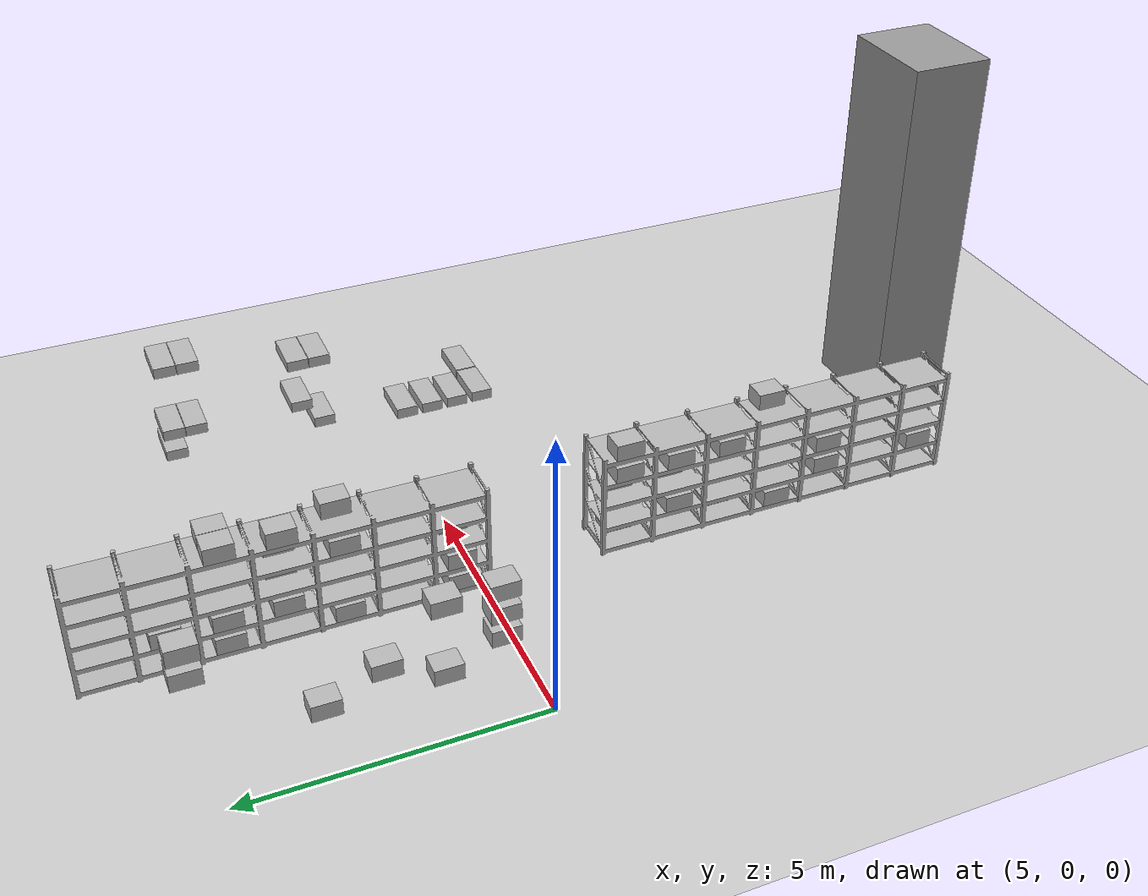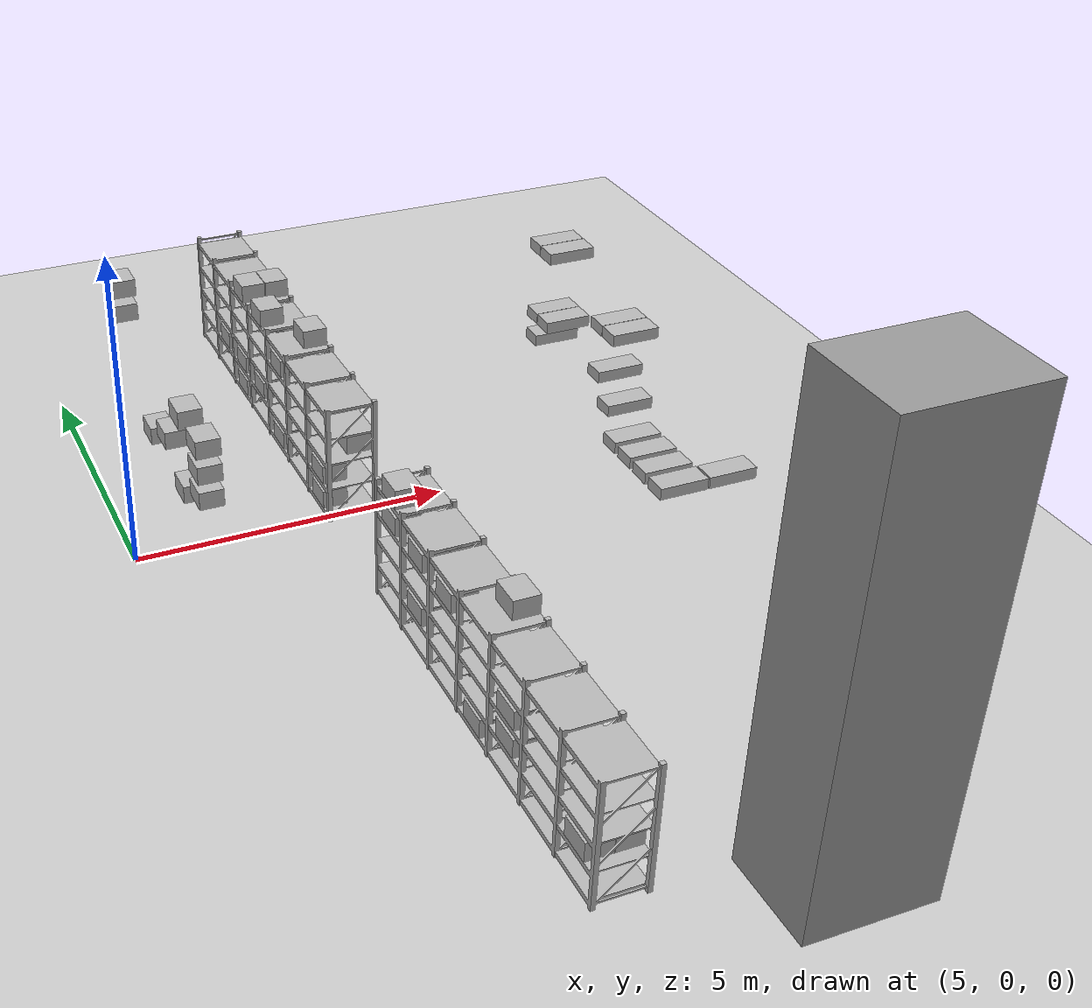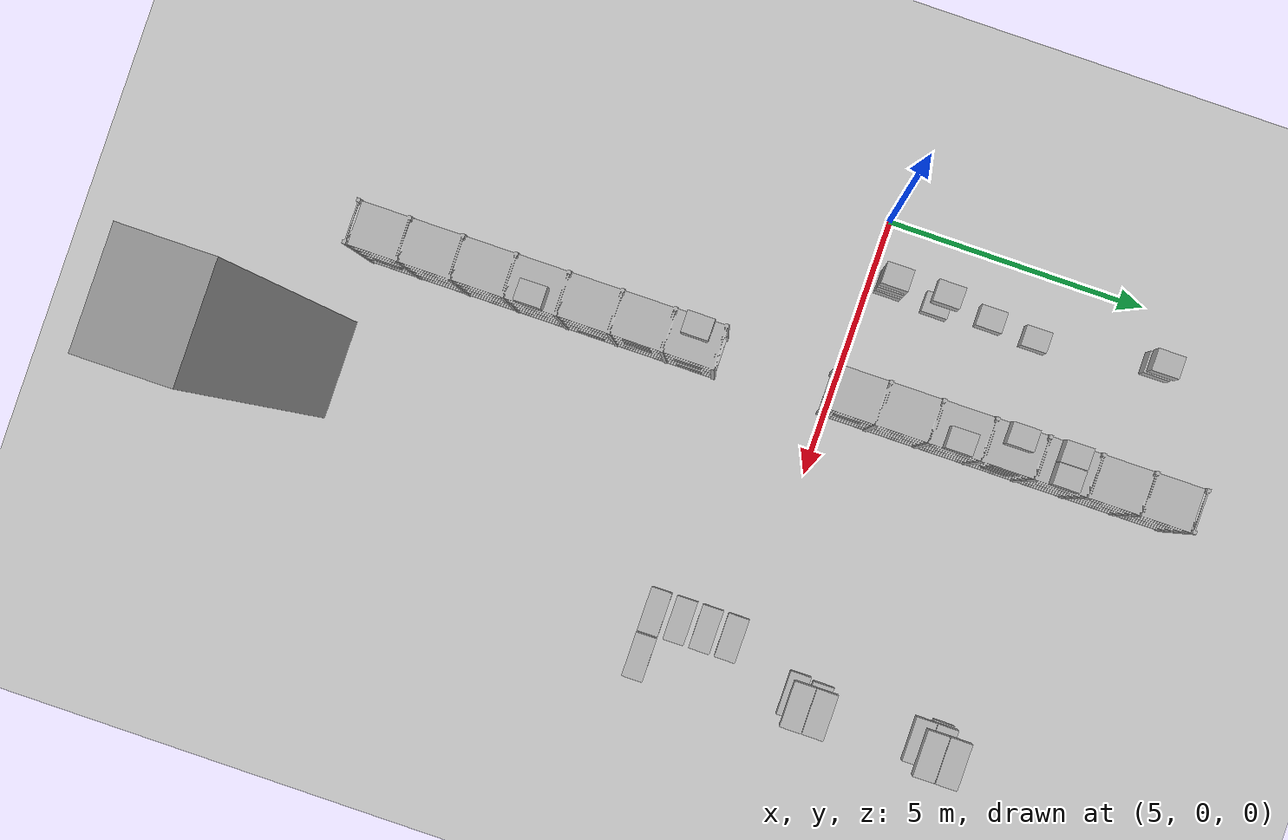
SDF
<sdf version="1.6">
 <world name="default">
  <model name="ground_plane">
   <static>1</static>
   <link name="link">
    <collision name="collision">
     <geometry><plane><normal>0 0 1</normal><size>100 100</size></plane></geometry>
     <surface><friction><ode><mu>100</mu><mu2>50</mu2></ode></friction></surface>
    </collision>
    <visual name="visual">
     <cast_shadows>0</cast_shadows>
     <geometry><plane><normal>0 0 1</normal><size>100 100</size></plane></geometry>
     <material>
      <script><uri>file://media/materials/scripts/gazebo.material</uri><name>Gazebo/Grey</name></script>
     </material>
    </visual>
   </link>
  </model>
  <model name="box_A_089">
   <pose>6.2649 0.35551 0.702 0 0 0</pose>
   <link name="link">
    <inertial>
     <mass>2.0</mass>
     <inertia><ixx>0.05667</ixx><iyy>0.04167</iyy><izz>0.06833</izz><ixy>0</ixy><ixz>0</ixz><iyz>0</iyz></inertia>
    </inertial>
    <collision name="collision">
     <geometry><box><size>0.4 0.5 0.3</size></box></geometry>
     <surface><friction><ode><mu>1.0</mu><mu2>1.0</mu2></ode></friction></surface>
    </collision>
    <visual name="visual">
     <cast_shadows>0</cast_shadows>
     <geometry><box><size>0.4 0.5 0.3</size></box></geometry>
     <material>
      <script>
       <uri>model://labeled_boxes/materials/scripts</uri>
       <uri>model://labeled_boxes/materials/textures</uri>
       <name>LabeledBox/A-089</name>
      </script>
     </material>
    </visual>
   </link>
  </model>
  <model name="box_A_091">
   <pose>6.2649 0.35551 1.152 0 0 0</pose>
   <link name="link">
    <inertial>
     <mass>2.0</mass>
     <inertia><ixx>0.05667</ixx><iyy>0.04167</iyy><izz>0.06833</izz><ixy>0</ixy><ixz>0</ixz><iyz>0</iyz></inertia>
    </inertial>
    <collision name="collision">
     <geometry><box><size>0.4 0.5 0.3</size></box></geometry>
     <surface><friction><ode><mu>1.0</mu><mu2>1.0</mu2></ode></friction></surface>
    </collision>
    <visual name="visual">
     <cast_shadows>0</cast_shadows>
     <geometry><box><size>0.4 0.5 0.3</size></box></geometry>
     <material>
      <script>
       <uri>model://labeled_boxes/materials/scripts</uri>
       <uri>model://labeled_boxes/materials/textures</uri>
       <name>LabeledBox/A-091</name>
      </script>
     </material>
    </visual>
   </link>
  </model>
  <model name="box_A_092">
   <pose>6.2649 0.35551 1.602 0 0 0</pose>
   <link name="link">
    <inertial>
     <mass>2.0</mass>
     <inertia><ixx>0.05667</ixx><iyy>0.04167</iyy><izz>0.06833</izz><ixy>0</ixy><ixz>0</ixz><iyz>0</iyz></inertia>
    </inertial>
    <collision name="collision">
     <geometry><box><size>0.4 0.5 0.3</size></box></geometry>
     <surface><friction><ode><mu>1.0</mu><mu2>1.0</mu2></ode></friction></surface>
    </collision>
    <visual name="visual">
     <cast_shadows>0</cast_shadows>
     <geometry><box><size>0.4 0.5 0.3</size></box></geometry>
     <material>
      <script>
       <uri>model://labeled_boxes/materials/scripts</uri>
       <uri>model://labeled_boxes/materials/textures</uri>
       <name>LabeledBox/A-092</name>
      </script>
     </material>
    </visual>
   </link>
  </model>
  <model name="box_A_093">
   <pose>6.2649 1.3094 0.252 0 0 0</pose>
   <link name="link">
    <inertial>
     <mass>2.0</mass>
     <inertia><ixx>0.05667</ixx><iyy>0.04167</iyy><izz>0.06833</izz><ixy>0</ixy><ixz>0</ixz><iyz>0</iyz></inertia>
    </inertial>
    <collision name="collision">
     <geometry><box><size>0.4 0.5 0.3</size></box></geometry>
     <surface><friction><ode><mu>1.0</mu><mu2>1.0</mu2></ode></friction></surface>
    </collision>
    <visual name="visual">
     <cast_shadows>0</cast_shadows>
     <geometry><box><size>0.4 0.5 0.3</size></box></geometry>
     <material>
      <script>
       <uri>model://labeled_boxes/materials/scripts</uri>
       <uri>model://labeled_boxes/materials/textures</uri>
       <name>LabeledBox/A-093</name>
      </script>
     </material>
    </visual>
   </link>
  </model>
  <model name="box_A_095">
   <pose>6.2649 1.3094 1.602 0 0 0</pose>
   <link name="link">
    <inertial>
     <mass>2.0</mass>
     <inertia><ixx>0.05667</ixx><iyy>0.04167</iyy><izz>0.06833</izz><ixy>0</ixy><ixz>0</ixz><iyz>0</iyz></inertia>
    </inertial>
    <collision name="collision">
     <geometry><box><size>0.4 0.5 0.3</size></box></geometry>
     <surface><friction><ode><mu>1.0</mu><mu2>1.0</mu2></ode></friction></surface>
    </collision>
    <visual name="visual">
     <cast_shadows>0</cast_shadows>
     <geometry><box><size>0.4 0.5 0.3</size></box></geometry>
     <material>
      <script>
       <uri>model://labeled_boxes/materials/scripts</uri>
       <uri>model://labeled_boxes/materials/textures</uri>
       <name>LabeledBox/A-095</name>
      </script>
     </material>
    </visual>
   </link>
  </model>
  <model name="box_A_096">
   <pose>6.2649 2.2809 0.702 0 0 0</pose>
   <link name="link">
    <inertial>
     <mass>2.0</mass>
     <inertia><ixx>0.05667</ixx><iyy>0.04167</iyy><izz>0.06833</izz><ixy>0</ixy><ixz>0</ixz><iyz>0</iyz></inertia>
    </inertial>
    <collision name="collision">
     <geometry><box><size>0.4 0.5 0.3</size></box></geometry>
     <surface><friction><ode><mu>1.0</mu><mu2>1.0</mu2></ode></friction></surface>
    </collision>
    <visual name="visual">
     <cast_shadows>0</cast_shadows>
     <geometry><box><size>0.4 0.5 0.3</size></box></geometry>
     <material>
      <script>
       <uri>model://labeled_boxes/materials/scripts</uri>
       <uri>model://labeled_boxes/materials/textures</uri>
       <name>LabeledBox/A-096</name>
      </script>
     </material>
    </visual>
   </link>
  </model>
  <model name="box_A_098">
   <pose>6.2649 3.2523 0.252 0 0 0</pose>
   <link name="link">
    <inertial>
     <mass>2.0</mass>
     <inertia><ixx>0.05667</ixx><iyy>0.04167</iyy><izz>0.06833</izz><ixy>0</ixy><ixz>0</ixz><iyz>0</iyz></inertia>
    </inertial>
    <collision name="collision">
     <geometry><box><size>0.4 0.5 0.3</size></box></geometry>
     <surface><friction><ode><mu>1.0</mu><mu2>1.0</mu2></ode></friction></surface>
    </collision>
    <visual name="visual">
     <cast_shadows>0</cast_shadows>
     <geometry><box><size>0.4 0.5 0.3</size></box></geometry>
     <material>
      <script>
       <uri>model://labeled_boxes/materials/scripts</uri>
       <uri>model://labeled_boxes/materials/textures</uri>
       <name>LabeledBox/A-098</name>
      </script>
     </material>
    </visual>
   </link>
  </model>
  <model name="box_A_103">
   <pose>6.2649 5.1951 1.602 0 0 0</pose>
   <link name="link">
    <inertial>
     <mass>2.0</mass>
     <inertia><ixx>0.05667</ixx><iyy>0.04167</iyy><izz>0.06833</izz><ixy>0</ixy><ixz>0</ixz><iyz>0</iyz></inertia>
    </inertial>
    <collision name="collision">
     <geometry><box><size>0.4 0.5 0.3</size></box></geometry>
     <surface><friction><ode><mu>1.0</mu><mu2>1.0</mu2></ode></friction></surface>
    </collision>
    <visual name="visual">
     <cast_shadows>0</cast_shadows>
     <geometry><box><size>0.4 0.5 0.3</size></box></geometry>
     <material>
      <script>
       <uri>model://labeled_boxes/materials/scripts</uri>
       <uri>model://labeled_boxes/materials/textures</uri>
       <name>LabeledBox/A-103</name>
      </script>
     </material>
    </visual>
   </link>
  </model>
  <model name="box_A_104">
   <pose>6.2649 5.1951 2.052 0 0 0</pose>
   <link name="link">
    <inertial>
     <mass>2.0</mass>
     <inertia><ixx>0.05667</ixx><iyy>0.04167</iyy><izz>0.06833</izz><ixy>0</ixy><ixz>0</ixz><iyz>0</iyz></inertia>
    </inertial>
    <collision name="collision">
     <geometry><box><size>0.4 0.5 0.3</size></box></geometry>
     <surface><friction><ode><mu>1.0</mu><mu2>1.0</mu2></ode></friction></surface>
    </collision>
    <visual name="visual">
     <cast_shadows>0</cast_shadows>
     <geometry><box><size>0.4 0.5 0.3</size></box></geometry>
     <material>
      <script>
       <uri>model://labeled_boxes/materials/scripts</uri>
       <uri>model://labeled_boxes/materials/textures</uri>
       <name>LabeledBox/A-104</name>
      </script>
     </material>
    </visual>
   </link>
  </model>
  <include>
   <name>rack_A5_0</name>
   <uri>model://warehouse_rack_5lvl_7bay</uri>
   <pose>8.4599 -5.5477 0 0 0 0</pose>
  </include>
  <model name="box_A_111">
   <pose>8.2549 -8.4445 0.702 0 0 0</pose>
   <link name="link">
    <inertial>
     <mass>2.0</mass>
     <inertia><ixx>0.05667</ixx><iyy>0.04167</iyy><izz>0.06833</izz><ixy>0</ixy><ixz>0</ixz><iyz>0</iyz></inertia>
    </inertial>
    <collision name="collision">
     <geometry><box><size>0.4 0.5 0.3</size></box></geometry>
     <surface><friction><ode><mu>1.0</mu><mu2>1.0</mu2></ode></friction></surface>
    </collision>
    <visual name="visual">
     <cast_shadows>0</cast_shadows>
     <geometry><box><size>0.4 0.5 0.3</size></box></geometry>
     <material>
      <script>
       <uri>model://labeled_boxes/materials/scripts</uri>
       <uri>model://labeled_boxes/materials/textures</uri>
       <name>LabeledBox/A-111</name>
      </script>
     </material>
    </visual>
   </link>
  </model>
  <model name="box_A_112">
   <pose>8.6649 -8.4445 0.702 0 0 0</pose>
   <link name="link">
    <inertial>
     <mass>2.0</mass>
     <inertia><ixx>0.05667</ixx><iyy>0.04167</iyy><izz>0.06833</izz><ixy>0</ixy><ixz>0</ixz><iyz>0</iyz></inertia>
    </inertial>
    <collision name="collision">
     <geometry><box><size>0.4 0.5 0.3</size></box></geometry>
     <surface><friction><ode><mu>1.0</mu><mu2>1.0</mu2></ode></friction></surface>
    </collision>
    <visual name="visual">
     <cast_shadows>0</cast_shadows>
     <geometry><box><size>0.4 0.5 0.3</size></box></geometry>
     <material>
      <script>
       <uri>model://labeled_boxes/materials/scripts</uri>
       <uri>model://labeled_boxes/materials/textures</uri>
       <name>LabeledBox/A-112</name>
      </script>
     </material>
    </visual>
   </link>
  </model>
  <model name="box_A_113">
   <pose>8.2549 -6.5191 0.702 0 0 0</pose>
   <link name="link">
    <inertial>
     <mass>2.0</mass>
     <inertia><ixx>0.05667</ixx><iyy>0.04167</iyy><izz>0.06833</izz><ixy>0</ixy><ixz>0</ixz><iyz>0</iyz></inertia>
    </inertial>
    <collision name="collision">
     <geometry><box><size>0.4 0.5 0.3</size></box></geometry>
     <surface><friction><ode><mu>1.0</mu><mu2>1.0</mu2></ode></friction></surface>
    </collision>
    <visual name="visual">
     <cast_shadows>0</cast_shadows>
     <geometry><box><size>0.4 0.5 0.3</size></box></geometry>
     <material>
      <script>
       <uri>model://labeled_boxes/materials/scripts</uri>
       <uri>model://labeled_boxes/materials/textures</uri>
       <name>LabeledBox/A-113</name>
      </script>
     </material>
    </visual>
   </link>
  </model>
  <model name="box_A_114">
   <pose>8.2549 -6.5191 1.152 0 0 0</pose>
   <link name="link">
    <inertial>
     <mass>2.0</mass>
     <inertia><ixx>0.05667</ixx><iyy>0.04167</iyy><izz>0.06833</izz><ixy>0</ixy><ixz>0</ixz><iyz>0</iyz></inertia>
    </inertial>
    <collision name="collision">
     <geometry><box><size>0.4 0.5 0.3</size></box></geometry>
     <surface><friction><ode><mu>1.0</mu><mu2>1.0</mu2></ode></friction></surface>
    </collision>
    <visual name="visual">
     <cast_shadows>0</cast_shadows>
     <geometry><box><size>0.4 0.5 0.3</size></box></geometry>
     <material>
      <script>
       <uri>model://labeled_boxes/materials/scripts</uri>
       <uri>model://labeled_boxes/materials/textures</uri>
       <name>LabeledBox/A-114</name>
      </script>
     </material>
    </visual>
   </link>
  </model>
  <model name="box_A_115">
   <pose>8.2549 -5.5477 0.252 0 0 0</pose>
   <link name="link">
    <inertial>
     <mass>2.0</mass>
     <inertia><ixx>0.05667</ixx><iyy>0.04167</iyy><izz>0.06833</izz><ixy>0</ixy><ixz>0</ixz><iyz>0</iyz></inertia>
    </inertial>
    <collision name="collision">
     <geometry><box><size>0.4 0.5 0.3</size></box></geometry>
     <surface><friction><ode><mu>1.0</mu><mu2>1.0</mu2></ode></friction></surface>
    </collision>
    <visual name="visual">
     <cast_shadows>0</cast_shadows>
     <geometry><box><size>0.4 0.5 0.3</size></box></geometry>
     <material>
      <script>
       <uri>model://labeled_boxes/materials/scripts</uri>
       <uri>model://labeled_boxes/materials/textures</uri>
       <name>LabeledBox/A-115</name>
      </script>
     </material>
    </visual>
   </link>
  </model>
  <model name="box_A_116">
   <pose>8.6649 -5.5477 2.052 0 0 0</pose>
   <link name="link">
    <inertial>
     <mass>2.0</mass>
     <inertia><ixx>0.05667</ixx><iyy>0.04167</iyy><izz>0.06833</izz><ixy>0</ixy><ixz>0</ixz><iyz>0</iyz></inertia>
    </inertial>
    <collision name="collision">
     <geometry><box><size>0.4 0.5 0.3</size></box></geometry>
     <surface><friction><ode><mu>1.0</mu><mu2>1.0</mu2></ode></friction></surface>
    </collision>
    <visual name="visual">
     <cast_shadows>0</cast_shadows>
     <geometry><box><size>0.4 0.5 0.3</size></box></geometry>
     <material>
      <script>
       <uri>model://labeled_boxes/materials/scripts</uri>
       <uri>model://labeled_boxes/materials/textures</uri>
       <name>LabeledBox/A-116</name>
      </script>
     </material>
    </visual>
   </link>
  </model>
  <model name="box_A_117">
   <pose>8.6649 -4.5763 0.252 0 0 0</pose>
   <link name="link">
    <inertial>
     <mass>2.0</mass>
     <inertia><ixx>0.05667</ixx><iyy>0.04167</iyy><izz>0.06833</izz><ixy>0</ixy><ixz>0</ixz><iyz>0</iyz></inertia>
    </inertial>
    <collision name="collision">
     <geometry><box><size>0.4 0.5 0.3</size></box></geometry>
     <surface><friction><ode><mu>1.0</mu><mu2>1.0</mu2></ode></friction></surface>
    </collision>
    <visual name="visual">
     <cast_shadows>0</cast_shadows>
     <geometry><box><size>0.4 0.5 0.3</size></box></geometry>
     <material>
      <script>
       <uri>model://labeled_boxes/materials/scripts</uri>
       <uri>model://labeled_boxes/materials/textures</uri>
       <name>LabeledBox/A-117</name>
      </script>
     </material>
    </visual>
   </link>
  </model>
  <model name="box_A_118">
   <pose>8.2549 -4.5763 1.602 0 0 0</pose>
   <link name="link">
    <inertial>
     <mass>2.0</mass>
     <inertia><ixx>0.05667</ixx><iyy>0.04167</iyy><izz>0.06833</izz><ixy>0</ixy><ixz>0</ixz><iyz>0</iyz></inertia>
    </inertial>
    <collision name="collision">
     <geometry><box><size>0.4 0.5 0.3</size></box></geometry>
     <surface><friction><ode><mu>1.0</mu><mu2>1.0</mu2></ode></friction></surface>
    </collision>
    <visual name="visual">
     <cast_shadows>0</cast_shadows>
     <geometry><box><size>0.4 0.5 0.3</size></box></geometry>
     <material>
      <script>
       <uri>model://labeled_boxes/materials/scripts</uri>
       <uri>model://labeled_boxes/materials/textures</uri>
       <name>LabeledBox/A-118</name>
      </script>
     </material>
    </visual>
   </link>
  </model>
  <model name="box_A_119">
   <pose>8.2549 -3.6049 0.702 0 0 0</pose>
   <link name="link">
    <inertial>
     <mass>2.0</mass>
     <inertia><ixx>0.05667</ixx><iyy>0.04167</iyy><izz>0.06833</izz><ixy>0</ixy><ixz>0</ixz><iyz>0</iyz></inertia>
    </inertial>
    <collision name="collision">
     <geometry><box><size>0.4 0.5 0.3</size></box></geometry>
     <surface><friction><ode><mu>1.0</mu><mu2>1.0</mu2></ode></friction></surface>
    </collision>
    <visual name="visual">
     <cast_shadows>0</cast_shadows>
     <geometry><box><size>0.4 0.5 0.3</size></box></geometry>
     <material>
      <script>
       <uri>model://labeled_boxes/materials/scripts</uri>
       <uri>model://labeled_boxes/materials/textures</uri>
       <name>LabeledBox/A-119</name>
      </script>
     </material>
    </visual>
   </link>
  </model>
  <model name="box_A_120">
   <pose>8.6649 -3.6049 1.152 0 0 0</pose>
   <link name="link">
    <inertial>
     <mass>2.0</mass>
     <inertia><ixx>0.05667</ixx><iyy>0.04167</iyy><izz>0.06833</izz><ixy>0</ixy><ixz>0</ixz><iyz>0</iyz></inertia>
    </inertial>
    <collision name="collision">
     <geometry><box><size>0.4 0.5 0.3</size></box></geometry>
     <surface><friction><ode><mu>1.0</mu><mu2>1.0</mu2></ode></friction></surface>
    </collision>
    <visual name="visual">
     <cast_shadows>0</cast_shadows>
     <geometry><box><size>0.4 0.5 0.3</size></box></geometry>
     <material>
      <script>
       <uri>model://labeled_boxes/materials/scripts</uri>
       <uri>model://labeled_boxes/materials/textures</uri>
       <name>LabeledBox/A-120</name>
      </script>
     </material>
    </visual>
   </link>
  </model>
  <model name="box_A_121">
   <pose>8.2549 -3.6049 1.602 0 0 0</pose>
   <link name="link">
    <inertial>
     <mass>2.0</mass>
     <inertia><ixx>0.05667</ixx><iyy>0.04167</iyy><izz>0.06833</izz><ixy>0</ixy><ixz>0</ixz><iyz>0</iyz></inertia>
    </inertial>
    <collision name="collision">
     <geometry><box><size>0.4 0.5 0.3</size></box></geometry>
     <surface><friction><ode><mu>1.0</mu><mu2>1.0</mu2></ode></friction></surface>
    </collision>
    <visual name="visual">
     <cast_shadows>0</cast_shadows>
     <geometry><box><size>0.4 0.5 0.3</size></box></geometry>
     <material>
      <script>
       <uri>model://labeled_boxes/materials/scripts</uri>
       <uri>model://labeled_boxes/materials/textures</uri>
       <name>LabeledBox/A-121</name>
      </script>
     </material>
    </visual>
   </link>
  </model>
  <model name="box_A_122">
   <pose>8.6649 -3.6049 1.602 0 0 0</pose>
   <link name="link">
    <inertial>
     <mass>2.0</mass>
     <inertia><ixx>0.05667</ixx><iyy>0.04167</iyy><izz>0.06833</izz><ixy>0</ixy><ixz>0</ixz><iyz>0</iyz></inertia>
    </inertial>
    <collision name="collision">
     <geometry><box><size>0.4 0.5 0.3</size></box></geometry>
     <surface><friction><ode><mu>1.0</mu><mu2>1.0</mu2></ode></friction></surface>
    </collision>
    <visual name="visual">
     <cast_shadows>0</cast_shadows>
     <geometry><box><size>0.4 0.5 0.3</size></box></geometry>
     <material>
      <script>
       <uri>model://labeled_boxes/materials/scripts</uri>
       <uri>model://labeled_boxes/materials/textures</uri>
       <name>LabeledBox/A-122</name>
      </script>
     </material>
    </visual>
   </link>
  </model>
  <model name="box_A_123">
   <pose>8.6649 -2.6509 0.252 0 0 0</pose>
   <link name="link">
    <inertial>
     <mass>2.0</mass>
     <inertia><ixx>0.05667</ixx><iyy>0.04167</iyy><izz>0.06833</izz><ixy>0</ixy><ixz>0</ixz><iyz>0</iyz></inertia>
    </inertial>
    <collision name="collision">
     <geometry><box><size>0.4 0.5 0.3</size></box></geometry>
     <surface><friction><ode><mu>1.0</mu><mu2>1.0</mu2></ode></friction></surface>
    </collision>
    <visual name="visual">
     <cast_shadows>0</cast_shadows>
     <geometry><box><size>0.4 0.5 0.3</size></box></geometry>
     <material>
      <script>
       <uri>model://labeled_boxes/materials/scripts</uri>
       <uri>model://labeled_boxes/materials/textures</uri>
       <name>LabeledBox/A-123</name>
      </script>
     </material>
    </visual>
   </link>
  </model>
  <model name="box_A_124">
   <pose>8.6649 -2.6509 1.152 0 0 0</pose>
   <link name="link">
    <inertial>
     <mass>2.0</mass>
     <inertia><ixx>0.05667</ixx><iyy>0.04167</iyy><izz>0.06833</izz><ixy>0</ixy><ixz>0</ixz><iyz>0</iyz></inertia>
    </inertial>
    <collision name="collision">
     <geometry><box><size>0.4 0.5 0.3</size></box></geometry>
     <surface><friction><ode><mu>1.0</mu><mu2>1.0</mu2></ode></friction></surface>
    </collision>
    <visual name="visual">
     <cast_shadows>0</cast_shadows>
     <geometry><box><size>0.4 0.5 0.3</size></box></geometry>
     <material>
      <script>
       <uri>model://labeled_boxes/materials/scripts</uri>
       <uri>model://labeled_boxes/materials/textures</uri>
       <name>LabeledBox/A-124</name>
      </script>
     </material>
    </visual>
   </link>
  </model>
  <model name="box_A_125">
   <pose>8.2549 -2.6509 1.602 0 0 0</pose>
   <link name="link">
    <inertial>
     <mass>2.0</mass>
     <inertia><ixx>0.05667</ixx><iyy>0.04167</iyy><izz>0.06833</izz><ixy>0</ixy><ixz>0</ixz><iyz>0</iyz></inertia>
    </inertial>
    <collision name="collision">
     <geometry><box><size>0.4 0.5 0.3</size></box></geometry>
     <surface><friction><ode><mu>1.0</mu><mu2>1.0</mu2></ode></friction></surface>
    </collision>
    <visual name="visual">
     <cast_shadows>0</cast_shadows>
     <geometry><box><size>0.4 0.5 0.3</size></box></geometry>
     <material>
      <script>
       <uri>model://labeled_boxes/materials/scripts</uri>
       <uri>model://labeled_boxes/materials/textures</uri>
       <name>LabeledBox/A-125</name>
      </script>
     </material>
    </visual>
   </link>
  </model>
  <model name="box_A_126">
   <pose>8.2549 -2.6509 2.052 0 0 0</pose>
   <link name="link">
    <inertial>
     <mass>2.0</mass>
     <inertia><ixx>0.05667</ixx><iyy>0.04167</iyy><izz>0.06833</izz><ixy>0</ixy><ixz>0</ixz><iyz>0</iyz></inertia>
    </inertial>
    <collision name="collision">
     <geometry><box><size>0.4 0.5 0.3</size></box></geometry>
     <surface><friction><ode><mu>1.0</mu><mu2>1.0</mu2></ode></friction></surface>
    </collision>
    <visual name="visual">
     <cast_shadows>0</cast_shadows>
     <geometry><box><size>0.4 0.5 0.3</size></box></geometry>
     <material>
      <script>
       <uri>model://labeled_boxes/materials/scripts</uri>
       <uri>model://labeled_boxes/materials/textures</uri>
       <name>LabeledBox/A-126</name>
      </script>
     </material>
    </visual>
   </link>
  </model>
  <include>
   <name>rack_A5_1</name>
   <uri>model://warehouse_rack_5lvl_7bay</uri>
   <pose>8.4599 3.2523 0 0 0 0</pose>
  </include>
  <model name="box_A_127">
   <pose>8.2549 0.35551 0.252 0 0 0</pose>
   <link name="link">
    <inertial>
     <mass>2.0</mass>
     <inertia><ixx>0.05667</ixx><iyy>0.04167</iyy><izz>0.06833</izz><ixy>0</ixy><ixz>0</ixz><iyz>0</iyz></inertia>
    </inertial>
    <collision name="collision">
     <geometry><box><size>0.4 0.5 0.3</size></box></geometry>
     <surface><friction><ode><mu>1.0</mu><mu2>1.0</mu2></ode></friction></surface>
    </collision>
    <visual name="visual">
     <cast_shadows>0</cast_shadows>
     <geometry><box><size>0.4 0.5 0.3</size></box></geometry>
     <material>
      <script>
       <uri>model://labeled_boxes/materials/scripts</uri>
       <uri>model://labeled_boxes/materials/textures</uri>
       <name>LabeledBox/A-127</name>
      </script>
     </material>
    </visual>
   </link>
  </model>
  <model name="box_A_128">
   <pose>8.2549 0.35551 0.702 0 0 0</pose>
   <link name="link">
    <inertial>
     <mass>2.0</mass>
     <inertia><ixx>0.05667</ixx><iyy>0.04167</iyy><izz>0.06833</izz><ixy>0</ixy><ixz>0</ixz><iyz>0</iyz></inertia>
    </inertial>
    <collision name="collision">
     <geometry><box><size>0.4 0.5 0.3</size></box></geometry>
     <surface><friction><ode><mu>1.0</mu><mu2>1.0</mu2></ode></friction></surface>
    </collision>
    <visual name="visual">
     <cast_shadows>0</cast_shadows>
     <geometry><box><size>0.4 0.5 0.3</size></box></geometry>
     <material>
      <script>
       <uri>model://labeled_boxes/materials/scripts</uri>
       <uri>model://labeled_boxes/materials/textures</uri>
       <name>LabeledBox/A-128</name>
      </script>
     </material>
    </visual>
   </link>
  </model>
  <model name="box_A_129">
   <pose>8.6649 0.35551 1.152 0 0 0</pose>
   <link name="link">
    <inertial>
     <mass>2.0</mass>
     <inertia><ixx>0.05667</ixx><iyy>0.04167</iyy><izz>0.06833</izz><ixy>0</ixy><ixz>0</ixz><iyz>0</iyz></inertia>
    </inertial>
    <collision name="collision">
     <geometry><box><size>0.4 0.5 0.3</size></box></geometry>
     <surface><friction><ode><mu>1.0</mu><mu2>1.0</mu2></ode></friction></surface>
    </collision>
    <visual name="visual">
     <cast_shadows>0</cast_shadows>
     <geometry><box><size>0.4 0.5 0.3</size></box></geometry>
     <material>
      <script>
       <uri>model://labeled_boxes/materials/scripts</uri>
       <uri>model://labeled_boxes/materials/textures</uri>
       <name>LabeledBox/A-129</name>
      </script>
     </material>
    </visual>
   </link>
  </model>
  <model name="box_A_130">
   <pose>8.2549 2.2809 0.252 0 0 0</pose>
   <link name="link">
    <inertial>
     <mass>2.0</mass>
     <inertia><ixx>0.05667</ixx><iyy>0.04167</iyy><izz>0.06833</izz><ixy>0</ixy><ixz>0</ixz><iyz>0</iyz></inertia>
    </inertial>
    <collision name="collision">
     <geometry><box><size>0.4 0.5 0.3</size></box></geometry>
     <surface><friction><ode><mu>1.0</mu><mu2>1.0</mu2></ode></friction></surface>
    </collision>
    <visual name="visual">
     <cast_shadows>0</cast_shadows>
     <geometry><box><size>0.4 0.5 0.3</size></box></geometry>
     <material>
      <script>
       <uri>model://labeled_boxes/materials/scripts</uri>
       <uri>model://labeled_boxes/materials/textures</uri>
       <name>LabeledBox/A-130</name>
      </script>
     </material>
    </visual>
   </link>
  </model>
  <model name="box_A_131">
   <pose>8.2549 2.2809 1.602 0 0 0</pose>
   <link name="link">
    <inertial>
     <mass>2.0</mass>
     <inertia><ixx>0.05667</ixx><iyy>0.04167</iyy><izz>0.06833</izz><ixy>0</ixy><ixz>0</ixz><iyz>0</iyz></inertia>
    </inertial>
    <collision name="collision">
     <geometry><box><size>0.4 0.5 0.3</size></box></geometry>
     <surface><friction><ode><mu>1.0</mu><mu2>1.0</mu2></ode></friction></surface>
    </collision>
    <visual name="visual">
     <cast_shadows>0</cast_shadows>
     <geometry><box><size>0.4 0.5 0.3</size></box></geometry>
     <material>
      <script>
       <uri>model://labeled_boxes/materials/scripts</uri>
       <uri>model://labeled_boxes/materials/textures</uri>
       <name>LabeledBox/A-131</name>
      </script>
     </material>
    </visual>
   </link>
  </model>
  <model name="box_A_132">
   <pose>8.6649 2.2809 2.052 0 0 0</pose>
   <link name="link">
    <inertial>
     <mass>2.0</mass>
     <inertia><ixx>0.05667</ixx><iyy>0.04167</iyy><izz>0.06833</izz><ixy>0</ixy><ixz>0</ixz><iyz>0</iyz></inertia>
    </inertial>
    <collision name="collision">
     <geometry><box><size>0.4 0.5 0.3</size></box></geometry>
     <surface><friction><ode><mu>1.0</mu><mu2>1.0</mu2></ode></friction></surface>
    </collision>
    <visual name="visual">
     <cast_shadows>0</cast_shadows>
     <geometry><box><size>0.4 0.5 0.3</size></box></geometry>
     <material>
      <script>
       <uri>model://labeled_boxes/materials/scripts</uri>
       <uri>model://labeled_boxes/materials/textures</uri>
       <name>LabeledBox/A-132</name>
      </script>
     </material>
    </visual>
   </link>
  </model>
  <model name="box_A_133">
   <pose>8.2549 3.2523 0.702 0 0 0</pose>
   <link name="link">
    <inertial>
     <mass>2.0</mass>
     <inertia><ixx>0.05667</ixx><iyy>0.04167</iyy><izz>0.06833</izz><ixy>0</ixy><ixz>0</ixz><iyz>0</iyz></inertia>
    </inertial>
    <collision name="collision">
     <geometry><box><size>0.4 0.5 0.3</size></box></geometry>
     <surface><friction><ode><mu>1.0</mu><mu2>1.0</mu2></ode></friction></surface>
    </collision>
    <visual name="visual">
     <cast_shadows>0</cast_shadows>
     <geometry><box><size>0.4 0.5 0.3</size></box></geometry>
     <material>
      <script>
       <uri>model://labeled_boxes/materials/scripts</uri>
       <uri>model://labeled_boxes/materials/textures</uri>
       <name>LabeledBox/A-133</name>
      </script>
     </material>
    </visual>
   </link>
  </model>
  <model name="box_A_134">
   <pose>8.6649 3.2523 0.702 0 0 0</pose>
   <link name="link">
    <inertial>
     <mass>2.0</mass>
     <inertia><ixx>0.05667</ixx><iyy>0.04167</iyy><izz>0.06833</izz><ixy>0</ixy><ixz>0</ixz><iyz>0</iyz></inertia>
    </inertial>
    <collision name="collision">
     <geometry><box><size>0.4 0.5 0.3</size></box></geometry>
     <surface><friction><ode><mu>1.0</mu><mu2>1.0</mu2></ode></friction></surface>
    </collision>
    <visual name="visual">
     <cast_shadows>0</cast_shadows>
     <geometry><box><size>0.4 0.5 0.3</size></box></geometry>
     <material>
      <script>
       <uri>model://labeled_boxes/materials/scripts</uri>
       <uri>model://labeled_boxes/materials/textures</uri>
       <name>LabeledBox/A-134</name>
      </script>
     </material>
    </visual>
   </link>
  </model>
  <model name="box_A_135">
   <pose>8.6649 3.2523 1.152 0 0 0</pose>
   <link name="link">
    <inertial>
     <mass>2.0</mass>
     <inertia><ixx>0.05667</ixx><iyy>0.04167</iyy><izz>0.06833</izz><ixy>0</ixy><ixz>0</ixz><iyz>0</iyz></inertia>
    </inertial>
    <collision name="collision">
     <geometry><box><size>0.4 0.5 0.3</size></box></geometry>
     <surface><friction><ode><mu>1.0</mu><mu2>1.0</mu2></ode></friction></surface>
    </collision>
    <visual name="visual">
     <cast_shadows>0</cast_shadows>
     <geometry><box><size>0.4 0.5 0.3</size></box></geometry>
     <material>
      <script>
       <uri>model://labeled_boxes/materials/scripts</uri>
       <uri>model://labeled_boxes/materials/textures</uri>
       <name>LabeledBox/A-135</name>
      </script>
     </material>
    </visual>
   </link>
  </model>
  <model name="box_A_136">
   <pose>8.6649 3.2523 1.602 0 0 0</pose>
   <link name="link">
    <inertial>
     <mass>2.0</mass>
     <inertia><ixx>0.05667</ixx><iyy>0.04167</iyy><izz>0.06833</izz><ixy>0</ixy><ixz>0</ixz><iyz>0</iyz></inertia>
    </inertial>
    <collision name="collision">
     <geometry><box><size>0.4 0.5 0.3</size></box></geometry>
     <surface><friction><ode><mu>1.0</mu><mu2>1.0</mu2></ode></friction></surface>
    </collision>
    <visual name="visual">
     <cast_shadows>0</cast_shadows>
     <geometry><box><size>0.4 0.5 0.3</size></box></geometry>
     <material>
      <script>
       <uri>model://labeled_boxes/materials/scripts</uri>
       <uri>model://labeled_boxes/materials/textures</uri>
       <name>LabeledBox/A-136</name>
      </script>
     </material>
    </visual>
   </link>
  </model>
  <model name="box_A_137">
   <pose>8.2549 3.2523 2.052 0 0 0</pose>
   <link name="link">
    <inertial>
     <mass>2.0</mass>
     <inertia><ixx>0.05667</ixx><iyy>0.04167</iyy><izz>0.06833</izz><ixy>0</ixy><ixz>0</ixz><iyz>0</iyz></inertia>
    </inertial>
    <collision name="collision">
     <geometry><box><size>0.4 0.5 0.3</size></box></geometry>
     <surface><friction><ode><mu>1.0</mu><mu2>1.0</mu2></ode></friction></surface>
    </collision>
    <visual name="visual">
     <cast_shadows>0</cast_shadows>
     <geometry><box><size>0.4 0.5 0.3</size></box></geometry>
     <material>
      <script>
       <uri>model://labeled_boxes/materials/scripts</uri>
       <uri>model://labeled_boxes/materials/textures</uri>
       <name>LabeledBox/A-137</name>
      </script>
     </material>
    </visual>
   </link>
  </model>
  <model name="box_A_138">
   <pose>8.2549 4.2237 0.252 0 0 0</pose>
   <link name="link">
    <inertial>
     <mass>2.0</mass>
     <inertia><ixx>0.05667</ixx><iyy>0.04167</iyy><izz>0.06833</izz><ixy>0</ixy><ixz>0</ixz><iyz>0</iyz></inertia>
    </inertial>
    <collision name="collision">
     <geometry><box><size>0.4 0.5 0.3</size></box></geometry>
     <surface><friction><ode><mu>1.0</mu><mu2>1.0</mu2></ode></friction></surface>
    </collision>
    <visual name="visual">
     <cast_shadows>0</cast_shadows>
     <geometry><box><size>0.4 0.5 0.3</size></box></geometry>
     <material>
      <script>
       <uri>model://labeled_boxes/materials/scripts</uri>
       <uri>model://labeled_boxes/materials/textures</uri>
       <name>LabeledBox/A-138</name>
      </script>
     </material>
    </visual>
   </link>
  </model>
  <model name="box_A_139">
   <pose>8.2549 4.2237 0.702 0 0 0</pose>
   <link name="link">
    <inertial>
     <mass>2.0</mass>
     <inertia><ixx>0.05667</ixx><iyy>0.04167</iyy><izz>0.06833</izz><ixy>0</ixy><ixz>0</ixz><iyz>0</iyz></inertia>
    </inertial>
    <collision name="collision">
     <geometry><box><size>0.4 0.5 0.3</size></box></geometry>
     <surface><friction><ode><mu>1.0</mu><mu2>1.0</mu2></ode></friction></surface>
    </collision>
    <visual name="visual">
     <cast_shadows>0</cast_shadows>
     <geometry><box><size>0.4 0.5 0.3</size></box></geometry>
     <material>
      <script>
       <uri>model://labeled_boxes/materials/scripts</uri>
       <uri>model://labeled_boxes/materials/textures</uri>
       <name>LabeledBox/A-139</name>
      </script>
     </material>
    </visual>
   </link>
  </model>
  <model name="box_A_140">
   <pose>8.2549 4.2237 2.052 0 0 0</pose>
   <link name="link">
    <inertial>
     <mass>2.0</mass>
     <inertia><ixx>0.05667</ixx><iyy>0.04167</iyy><izz>0.06833</izz><ixy>0</ixy><ixz>0</ixz><iyz>0</iyz></inertia>
    </inertial>
    <collision name="collision">
     <geometry><box><size>0.4 0.5 0.3</size></box></geometry>
     <surface><friction><ode><mu>1.0</mu><mu2>1.0</mu2></ode></friction></surface>
    </collision>
    <visual name="visual">
     <cast_shadows>0</cast_shadows>
     <geometry><box><size>0.4 0.5 0.3</size></box></geometry>
     <material>
      <script>
       <uri>model://labeled_boxes/materials/scripts</uri>
       <uri>model://labeled_boxes/materials/textures</uri>
       <name>LabeledBox/A-140</name>
      </script>
     </material>
    </visual>
   </link>
  </model>
  <model name="box_A_141">
   <pose>8.6649 4.2237 2.052 0 0 0</pose>
   <link name="link">
    <inertial>
     <mass>2.0</mass>
     <inertia><ixx>0.05667</ixx><iyy>0.04167</iyy><izz>0.06833</izz><ixy>0</ixy><ixz>0</ixz><iyz>0</iyz></inertia>
    </inertial>
    <collision name="collision">
     <geometry><box><size>0.4 0.5 0.3</size></box></geometry>
     <surface><friction><ode><mu>1.0</mu><mu2>1.0</mu2></ode></friction></surface>
    </collision>
    <visual name="visual">
     <cast_shadows>0</cast_shadows>
     <geometry><box><size>0.4 0.5 0.3</size></box></geometry>
     <material>
      <script>
       <uri>model://labeled_boxes/materials/scripts</uri>
       <uri>model://labeled_boxes/materials/textures</uri>
       <name>LabeledBox/A-141</name>
      </script>
     </material>
    </visual>
   </link>
  </model>
  <model name="box_A_142">
   <pose>8.2549 5.1951 0.702 0 0 0</pose>
   <link name="link">
    <inertial>
     <mass>2.0</mass>
     <inertia><ixx>0.05667</ixx><iyy>0.04167</iyy><izz>0.06833</izz><ixy>0</ixy><ixz>0</ixz><iyz>0</iyz></inertia>
    </inertial>
    <collision name="collision">
     <geometry><box><size>0.4 0.5 0.3</size></box></geometry>
     <surface><friction><ode><mu>1.0</mu><mu2>1.0</mu2></ode></friction></surface>
    </collision>
    <visual name="visual">
     <cast_shadows>0</cast_shadows>
     <geometry><box><size>0.4 0.5 0.3</size></box></geometry>
     <material>
      <script>
       <uri>model://labeled_boxes/materials/scripts</uri>
       <uri>model://labeled_boxes/materials/textures</uri>
       <name>LabeledBox/A-142</name>
      </script>
     </material>
    </visual>
   </link>
  </model>
  <model name="box_B_046">
   <pose>13.966 1.1473 0.202 0 0 1.5708</pose>
   <link name="link">
    <inertial>
     <mass>4.0</mass>
     <inertia><ixx>0.25417</ixx><iyy>0.06667</iyy><izz>0.29417</izz><ixy>0</ixy><ixz>0</ixz><iyz>0</iyz></inertia>
    </inertial>
    <collision name="collision">
     <geometry><box><size>0.4 0.85 0.2</size></box></geometry>
     <surface><friction><ode><mu>1.0</mu><mu2>1.0</mu2></ode></friction></surface>
    </collision>
    <visual name="visual">
     <cast_shadows>0</cast_shadows>
     <geometry><box><size>0.4 0.85 0.2</size></box></geometry>
     <material>
      <script>
       <uri>model://labeled_boxes/materials/scripts</uri>
       <uri>model://labeled_boxes/materials/textures</uri>
       <name>LabeledBox/B-046</name>
      </script>
     </material>
    </visual>
   </link>
  </model>
  <model name="box_B_047">
   <pose>13.966 1.5573 0.652 0 0 1.5708</pose>
   <link name="link">
    <inertial>
     <mass>4.0</mass>
     <inertia><ixx>0.25417</ixx><iyy>0.06667</iyy><izz>0.29417</izz><ixy>0</ixy><ixz>0</ixz><iyz>0</iyz></inertia>
    </inertial>
    <collision name="collision">
     <geometry><box><size>0.4 0.85 0.2</size></box></geometry>
     <surface><friction><ode><mu>1.0</mu><mu2>1.0</mu2></ode></friction></surface>
    </collision>
    <visual name="visual">
     <cast_shadows>0</cast_shadows>
     <geometry><box><size>0.4 0.85 0.2</size></box></geometry>
     <material>
      <script>
       <uri>model://labeled_boxes/materials/scripts</uri>
       <uri>model://labeled_boxes/materials/textures</uri>
       <name>LabeledBox/B-047</name>
      </script>
     </material>
    </visual>
   </link>
  </model>
  <model name="box_B_048">
   <pose>13.966 1.1473 1.552 0 0 1.5708</pose>
   <link name="link">
    <inertial>
     <mass>4.0</mass>
     <inertia><ixx>0.25417</ixx><iyy>0.06667</iyy><izz>0.29417</izz><ixy>0</ixy><ixz>0</ixz><iyz>0</iyz></inertia>
    </inertial>
    <collision name="collision">
     <geometry><box><size>0.4 0.85 0.2</size></box></geometry>
     <surface><friction><ode><mu>1.0</mu><mu2>1.0</mu2></ode></friction></surface>
    </collision>
    <visual name="visual">
     <cast_shadows>0</cast_shadows>
     <geometry><box><size>0.4 0.85 0.2</size></box></geometry>
     <material>
      <script>
       <uri>model://labeled_boxes/materials/scripts</uri>
       <uri>model://labeled_boxes/materials/textures</uri>
       <name>LabeledBox/B-048</name>
      </script>
     </material>
    </visual>
   </link>
  </model>
  <model name="box_B_049">
   <pose>13.966 1.5573 1.552 0 0 1.5708</pose>
   <link name="link">
    <inertial>
     <mass>4.0</mass>
     <inertia><ixx>0.25417</ixx><iyy>0.06667</iyy><izz>0.29417</izz><ixy>0</ixy><ixz>0</ixz><iyz>0</iyz></inertia>
    </inertial>
    <collision name="collision">
     <geometry><box><size>0.4 0.85 0.2</size></box></geometry>
     <surface><friction><ode><mu>1.0</mu><mu2>1.0</mu2></ode></friction></surface>
    </collision>
    <visual name="visual">
     <cast_shadows>0</cast_shadows>
     <geometry><box><size>0.4 0.85 0.2</size></box></geometry>
     <material>
      <script>
       <uri>model://labeled_boxes/materials/scripts</uri>
       <uri>model://labeled_boxes/materials/textures</uri>
       <name>LabeledBox/B-049</name>
      </script>
     </material>
    </visual>
   </link>
  </model>
  <model name="box_B_082">
   <pose>13.966 3.9573 0.202 0 0 1.5708</pose>
   <link name="link">
    <inertial>
     <mass>4.0</mass>
     <inertia><ixx>0.25417</ixx><iyy>0.06667</iyy><izz>0.29417</izz><ixy>0</ixy><ixz>0</ixz><iyz>0</iyz></inertia>
    </inertial>
    <collision name="collision">
     <geometry><box><size>0.4 0.85 0.2</size></box></geometry>
     <surface><friction><ode><mu>1.0</mu><mu2>1.0</mu2></ode></friction></surface>
    </collision>
    <visual name="visual">
     <cast_shadows>0</cast_shadows>
     <geometry><box><size>0.4 0.85 0.2</size></box></geometry>
     <material>
      <script>
       <uri>model://labeled_boxes/materials/scripts</uri>
       <uri>model://labeled_boxes/materials/textures</uri>
       <name>LabeledBox/B-082</name>
      </script>
     </material>
    </visual>
   </link>
  </model>
  <model name="box_B_083">
   <pose>13.966 3.5473 0.652 0 0 1.5708</pose>
   <link name="link">
    <inertial>
     <mass>4.0</mass>
     <inertia><ixx>0.25417</ixx><iyy>0.06667</iyy><izz>0.29417</izz><ixy>0</ixy><ixz>0</ixz><iyz>0</iyz></inertia>
    </inertial>
    <collision name="collision">
     <geometry><box><size>0.4 0.85 0.2</size></box></geometry>
     <surface><friction><ode><mu>1.0</mu><mu2>1.0</mu2></ode></friction></surface>
    </collision>
    <visual name="visual">
     <cast_shadows>0</cast_shadows>
     <geometry><box><size>0.4 0.85 0.2</size></box></geometry>
     <material>
      <script>
       <uri>model://labeled_boxes/materials/scripts</uri>
       <uri>model://labeled_boxes/materials/textures</uri>
       <name>LabeledBox/B-083</name>
      </script>
     </material>
    </visual>
   </link>
  </model>
  <model name="box_B_084">
   <pose>13.966 3.9573 0.652 0 0 1.5708</pose>
   <link name="link">
    <inertial>
     <mass>4.0</mass>
     <inertia><ixx>0.25417</ixx><iyy>0.06667</iyy><izz>0.29417</izz><ixy>0</ixy><ixz>0</ixz><iyz>0</iyz></inertia>
    </inertial>
    <collision name="collision">
     <geometry><box><size>0.4 0.85 0.2</size></box></geometry>
     <surface><friction><ode><mu>1.0</mu><mu2>1.0</mu2></ode></friction></surface>
    </collision>
    <visual name="visual">
     <cast_shadows>0</cast_shadows>
     <geometry><box><size>0.4 0.85 0.2</size></box></geometry>
     <material>
      <script>
       <uri>model://labeled_boxes/materials/scripts</uri>
       <uri>model://labeled_boxes/materials/textures</uri>
       <name>LabeledBox/B-084</name>
      </script>
     </material>
    </visual>
   </link>
  </model>
  <model name="box_B_085">
   <pose>13.966 3.5473 2.002 0 0 1.5708</pose>
   <link name="link">
    <inertial>
     <mass>4.0</mass>
     <inertia><ixx>0.25417</ixx><iyy>0.06667</iyy><izz>0.29417</izz><ixy>0</ixy><ixz>0</ixz><iyz>0</iyz></inertia>
    </inertial>
    <collision name="collision">
     <geometry><box><size>0.4 0.85 0.2</size></box></geometry>
     <surface><friction><ode><mu>1.0</mu><mu2>1.0</mu2></ode></friction></surface>
    </collision>
    <visual name="visual">
     <cast_shadows>0</cast_shadows>
     <geometry><box><size>0.4 0.85 0.2</size></box></geometry>
     <material>
      <script>
       <uri>model://labeled_boxes/materials/scripts</uri>
       <uri>model://labeled_boxes/materials/textures</uri>
       <name>LabeledBox/B-085</name>
      </script>
     </material>
    </visual>
   </link>
  </model>
  <model name="box_B_086">
   <pose>13.966 3.9573 2.002 0 0 1.5708</pose>
   <link name="link">
    <inertial>
     <mass>4.0</mass>
     <inertia><ixx>0.25417</ixx><iyy>0.06667</iyy><izz>0.29417</izz><ixy>0</ixy><ixz>0</ixz><iyz>0</iyz></inertia>
    </inertial>
    <collision name="collision">
     <geometry><box><size>0.4 0.85 0.2</size></box></geometry>
     <surface><friction><ode><mu>1.0</mu><mu2>1.0</mu2></ode></friction></surface>
    </collision>
    <visual name="visual">
     <cast_shadows>0</cast_shadows>
     <geometry><box><size>0.4 0.85 0.2</size></box></geometry>
     <material>
      <script>
       <uri>model://labeled_boxes/materials/scripts</uri>
       <uri>model://labeled_boxes/materials/textures</uri>
       <name>LabeledBox/B-086</name>
      </script>
     </material>
    </visual>
   </link>
  </model>
  <model name="box_B_151">
   <pose>14.184 -1.7958 0.4292 0 0 1.5708</pose>
   <link name="link">
    <inertial>
     <mass>4.0</mass>
     <inertia><ixx>0.25417</ixx><iyy>0.06667</iyy><izz>0.29417</izz><ixy>0</ixy><ixz>0</ixz><iyz>0</iyz></inertia>
    </inertial>
    <collision name="collision">
     <geometry><box><size>0.4 0.85 0.2</size></box></geometry>
     <surface><friction><ode><mu>1.0</mu><mu2>1.0</mu2></ode></friction></surface>
    </collision>
    <visual name="visual">
     <cast_shadows>0</cast_shadows>
     <geometry><box><size>0.4 0.85 0.2</size></box></geometry>
     <material>
      <script>
       <uri>model://labeled_boxes/materials/scripts</uri>
       <uri>model://labeled_boxes/materials/textures</uri>
       <name>LabeledBox/B-151</name>
      </script>
     </material>
    </visual>
   </link>
  </model>
  <model name="box_B_152">
   <pose>13.304 -1.7958 0.4292 0 0 1.5708</pose>
   <link name="link">
    <inertial>
     <mass>4.0</mass>
     <inertia><ixx>0.25417</ixx><iyy>0.06667</iyy><izz>0.29417</izz><ixy>0</ixy><ixz>0</ixz><iyz>0</iyz></inertia>
    </inertial>
    <collision name="collision">
     <geometry><box><size>0.4 0.85 0.2</size></box></geometry>
     <surface><friction><ode><mu>1.0</mu><mu2>1.0</mu2></ode></friction></surface>
    </collision>
    <visual name="visual">
     <cast_shadows>0</cast_shadows>
     <geometry><box><size>0.4 0.85 0.2</size></box></geometry>
     <material>
      <script>
       <uri>model://labeled_boxes/materials/scripts</uri>
       <uri>model://labeled_boxes/materials/textures</uri>
       <name>LabeledBox/B-152</name>
      </script>
     </material>
    </visual>
   </link>
  </model>
  <model name="box_B_154">
   <pose>13.304 -1.2958 0.4292 0 0 1.5708</pose>
   <link name="link">
    <inertial>
     <mass>4.0</mass>
     <inertia><ixx>0.25417</ixx><iyy>0.06667</iyy><izz>0.29417</izz><ixy>0</ixy><ixz>0</ixz><iyz>0</iyz></inertia>
    </inertial>
    <collision name="collision">
     <geometry><box><size>0.4 0.85 0.2</size></box></geometry>
     <surface><friction><ode><mu>1.0</mu><mu2>1.0</mu2></ode></friction></surface>
    </collision>
    <visual name="visual">
     <cast_shadows>0</cast_shadows>
     <geometry><box><size>0.4 0.85 0.2</size></box></geometry>
     <material>
      <script>
       <uri>model://labeled_boxes/materials/scripts</uri>
       <uri>model://labeled_boxes/materials/textures</uri>
       <name>LabeledBox/B-154</name>
      </script>
     </material>
    </visual>
   </link>
  </model>
  <model name="box_B_156">
   <pose>13.304 -0.79577 0.4292 0 0 1.5708</pose>
   <link name="link">
    <inertial>
     <mass>4.0</mass>
     <inertia><ixx>0.25417</ixx><iyy>0.06667</iyy><izz>0.29417</izz><ixy>0</ixy><ixz>0</ixz><iyz>0</iyz></inertia>
    </inertial>
    <collision name="collision">
     <geometry><box><size>0.4 0.85 0.2</size></box></geometry>
     <surface><friction><ode><mu>1.0</mu><mu2>1.0</mu2></ode></friction></surface>
    </collision>
    <visual name="visual">
     <cast_shadows>0</cast_shadows>
     <geometry><box><size>0.4 0.85 0.2</size></box></geometry>
     <material>
      <script>
       <uri>model://labeled_boxes/materials/scripts</uri>
       <uri>model://labeled_boxes/materials/textures</uri>
       <name>LabeledBox/B-156</name>
      </script>
     </material>
    </visual>
   </link>
  </model>
  <model name="box_B_158">
   <pose>13.304 -0.29577 0.4292 0 0 1.5708</pose>
   <link name="link">
    <inertial>
     <mass>4.0</mass>
     <inertia><ixx>0.25417</ixx><iyy>0.06667</iyy><izz>0.29417</izz><ixy>0</ixy><ixz>0</ixz><iyz>0</iyz></inertia>
    </inertial>
    <collision name="collision">
     <geometry><box><size>0.4 0.85 0.2</size></box></geometry>
     <surface><friction><ode><mu>1.0</mu><mu2>1.0</mu2></ode></friction></surface>
    </collision>
    <visual name="visual">
     <cast_shadows>0</cast_shadows>
     <geometry><box><size>0.4 0.85 0.2</size></box></geometry>
     <material>
      <script>
       <uri>model://labeled_boxes/materials/scripts</uri>
       <uri>model://labeled_boxes/materials/textures</uri>
       <name>LabeledBox/B-158</name>
      </script>
     </material>
    </visual>
   </link>
  </model>
  <model name="wall_filler_1">
   <static>1</static>
   <pose>10.9695 -9.58771 3.48855 0 0 1.5708</pose>
   <link name="link">
    <collision name="collision"><geometry><box><size>1.5 1.9 6.97771</size></box></geometry></collision>
    <visual name="visual">
     <geometry><box><size>1.5 1.9 6.97771</size></box></geometry>
     <material>
      <script><uri>file://media/materials/scripts/gazebo.material</uri><name>Gazebo/Grey</name></script>
     </material>
    </visual>
   </link>
  </model>
 </world>
</sdf>
